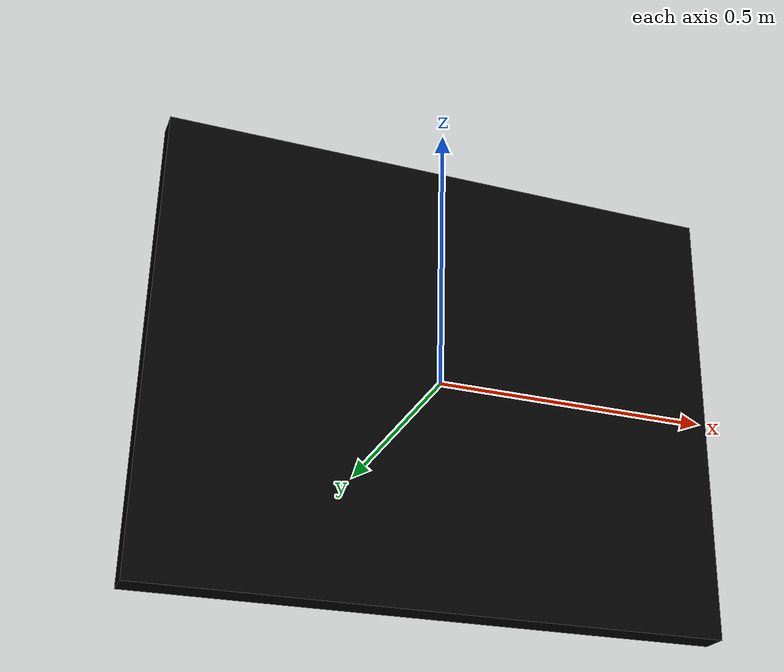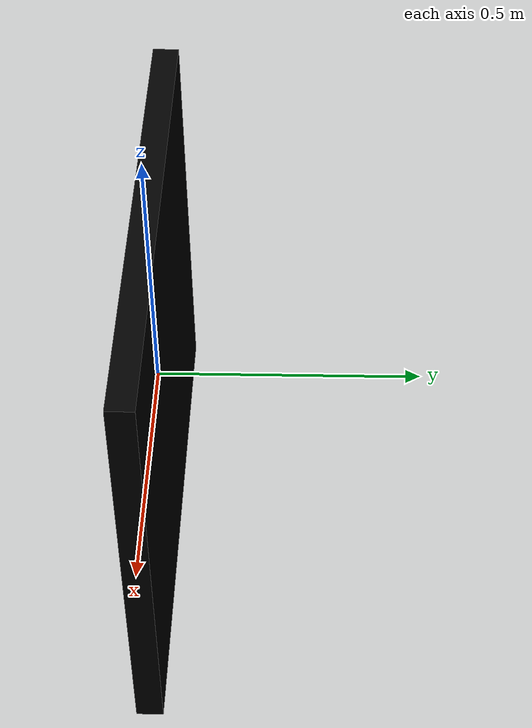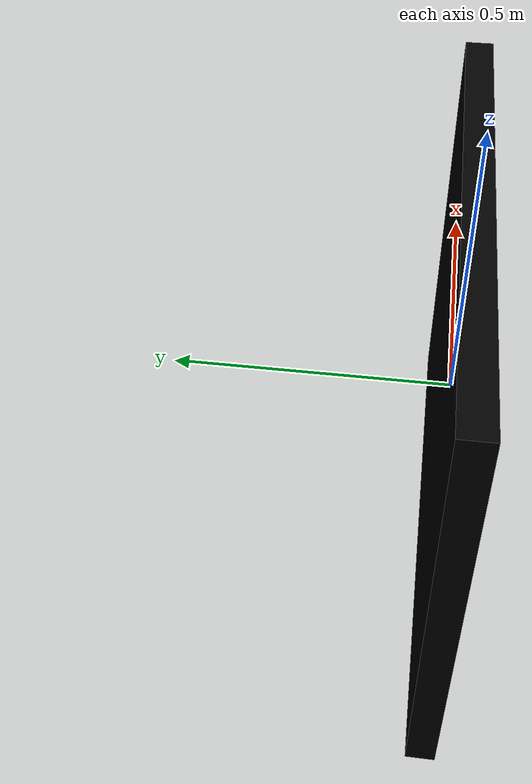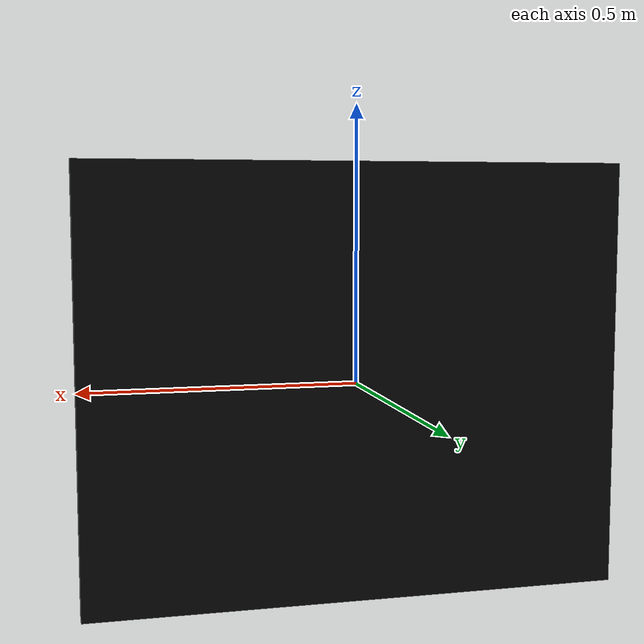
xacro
<?xml version="1.0"?>
<robot name="obstacle_0" xmlns:xacro="http://ros.org/wiki/xacro" >

    <link name='obstacle_0_link'>
        <inertial>
            <origin xyz="0 0 0" rpy="0 0 0" />
                <mass value="0.0000001" />
                <inertia
                    ixx="0.00000001"
                    ixy="0"
                    ixz="0"
                    iyy="0.00000001"
                    iyz="0"
                    izz="0.0000001" />
        </inertial>

        <!-- 构建主横梁 -->
        <visual>
            <origin xyz='0.0 0.0 0.0' rpy='0.0 0.0 0.0'/>
            <geometry>
                <box size="1.0 0.05 0.8"/>
            </geometry>
            <material name='black'>
                <color rgba='0.0 0.0 0.0 1'/>
            </material>
        </visual>
        <collision>
            <origin xyz='0.0 0.0 0.0' rpy='0.0 0.0 0.0'/>
            <geometry>
                <box size="1.0 0.002 0.8"/>
            </geometry>
        </collision>
    </link>

</robot>
